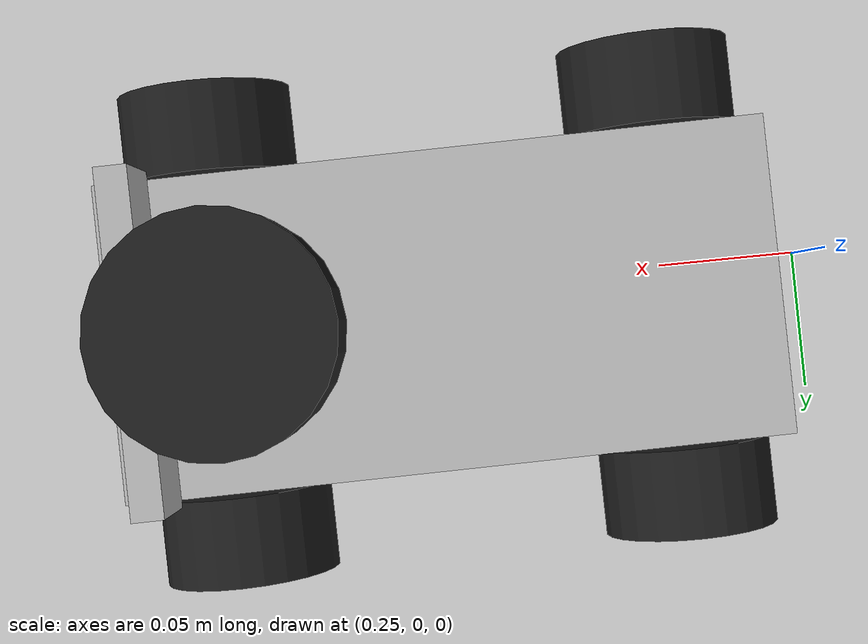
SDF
<sdf version="1.7">
 <world name="default">
  <light name="sun" type="directional">
   <pose>0 0 10 0 -0 0</pose>
   <diffuse>0.8 0.8 0.8 1</diffuse>
   <specular>0.2 0.2 0.2 1</specular>
   <attenuation>
    <range>1000</range>
    <constant>0.9</constant>
    <linear>0.01</linear>
    <quadratic>0.001</quadratic>
   </attenuation>
   <direction>-0.5 0.1 -0.9</direction>
   <spot><inner_angle>0</inner_angle><outer_angle>0</outer_angle><falloff>0</falloff></spot>
  </light>
  <model name="ground_plane">
   <static>1</static>
   <link name="link">
    <collision name="collision">
     <geometry><plane><normal>0 0 1</normal><size>100 100</size></plane></geometry>
     <surface>
      <contact><collide_bitmask>65535</collide_bitmask></contact>
      <friction><ode><mu>100</mu><mu2>50</mu2></ode></friction>
     </surface>
    </collision>
    <visual name="visual">
     <cast_shadows>0</cast_shadows>
     <geometry><plane><normal>0 0 1</normal><size>100 100</size></plane></geometry>
     <material>
      <script><uri>file://media/materials/scripts/gazebo.material</uri><name>Gazebo/Grey</name></script>
     </material>
    </visual>
   </link>
  </model>
  <gravity>0 0 -9.8</gravity>
  <magnetic_field>6e-06 2.3e-05 -4.2e-05</magnetic_field>
  <atmosphere type="adiabatic"/>
  <physics type="ode">
   <max_step_size>0.001</max_step_size>
   <real_time_factor>1</real_time_factor>
   <real_time_update_rate>1000</real_time_update_rate>
  </physics>
  <scene><ambient>0.4 0.4 0.4 1</ambient><background>0.7 0.7 0.7 1</background><shadows>1</shadows></scene>
  <spherical_coordinates>
   <surface_model>EARTH_WGS84</surface_model>
   <latitude_deg>0</latitude_deg>
   <longitude_deg>0</longitude_deg>
   <elevation>0</elevation>
   <heading_deg>0</heading_deg>
  </spherical_coordinates>
  <audio><device>default</device></audio>
  <model name="my_slambot">
   <link name="base_link">
    <inertial>
     <pose>0.107471 0 0.043765 0 -0 0</pose>
     <mass>0.85</mass>
     <inertia>
      <ixx>0.00226679</ixx>
      <ixy>1.5474e-20</ixy>
      <ixz>-0.000403094</ixz>
      <iyy>0.00430693</iyy>
      <iyz>-2.54949e-21</iyz>
      <izz>0.0041726</izz>
     </inertia>
    </inertial>
    <collision name="base_link_fixed_joint_lump__T265_pose_frame_collision">
     <pose>0.17 0 0.0725 0 -0 1.5708</pose>
     <geometry><box><size>0.105 0.01 0.025</size></box></geometry>
    </collision>
    <collision name="base_link_fixed_joint_lump__chassis_collision_1">
     <pose>0.0775 0 0.03 0 -0 0</pose>
     <geometry><box><size>0.21 0.1 0.06</size></box></geometry>
    </collision>
    <collision name="base_link_fixed_joint_lump__fl_wheel_collision_2">
     <pose>0.155 0.07 0 1.5708 -0 0</pose>
     <geometry><sphere><radius>0.03</radius></sphere></geometry>
     <surface><friction><ode><mu>0.001</mu><mu2>0.001</mu2></ode></friction></surface>
    </collision>
    <collision name="base_link_fixed_joint_lump__fr_wheel_collision_3">
     <pose>0.155 -0.07 0 1.5708 -0 0</pose>
     <geometry><sphere><radius>0.03</radius></sphere></geometry>
     <surface><friction><ode><mu>0.001</mu><mu2>0.001</mu2></ode></friction></surface>
    </collision>
    <collision name="base_link_fixed_joint_lump__laser_frame_collision_4">
     <pose>0.14 0 0.105 0 -0 3.14159</pose>
     <geometry><cylinder><length>0.025</length><radius>0.035</radius></cylinder></geometry>
    </collision>
    <collision name="base_link_fixed_joint_lump__laser_frame_collision_5">
     <pose>0.14 0 0.07625 0 -0 3.14159</pose>
     <geometry><cylinder><length>0.0325</length><radius>0.01</radius></cylinder></geometry>
    </collision>
    <visual name="base_link_fixed_joint_lump__T265_pose_frame_visual">
     <pose>0.17 0 0.0725 0 -0 1.5708</pose>
     <geometry><box><size>0.105 0.01 0.025</size></box></geometry>
    </visual>
    <visual name="base_link_fixed_joint_lump__chassis_visual_1">
     <pose>0.0775 0 0.03 0 -0 0</pose>
     <geometry><box><size>0.21 0.1 0.06</size></box></geometry>
    </visual>
    <visual name="base_link_fixed_joint_lump__fl_wheel_visual_2">
     <pose>0.155 0.07 0 1.5708 -0 0</pose>
     <geometry><cylinder><length>0.03</length><radius>0.03</radius></cylinder></geometry>
     <material>
      <script><name>Gazebo/Black</name><uri>file://media/materials/scripts/gazebo.material</uri></script>
     </material>
    </visual>
    <visual name="base_link_fixed_joint_lump__fr_wheel_visual_3">
     <pose>0.155 -0.07 0 1.5708 -0 0</pose>
     <geometry><cylinder><length>0.03</length><radius>0.03</radius></cylinder></geometry>
     <material>
      <script><name>Gazebo/Black</name><uri>file://media/materials/scripts/gazebo.material</uri></script>
     </material>
    </visual>
    <visual name="base_link_fixed_joint_lump__laser_frame_visual_4">
     <pose>0.14 0 0.105 0 -0 3.14159</pose>
     <geometry><cylinder><length>0.025</length><radius>0.035</radius></cylinder></geometry>
     <material>
      <script><name>Gazebo/Black</name><uri>file://media/materials/scripts/gazebo.material</uri></script>
     </material>
    </visual>
    <visual name="base_link_fixed_joint_lump__laser_frame_visual_5">
     <pose>0.14 0 0.07625 0 -0 3.14159</pose>
     <geometry><cylinder><length>0.0325</length><radius>0.01</radius></cylinder></geometry>
     <material>
      <script><name>Gazebo/Black</name><uri>file://media/materials/scripts/gazebo.material</uri></script>
     </material>
    </visual>
    <sensor name="laser" type="ray">
     <visualize>1</visualize>
     <update_rate>10</update_rate>
     <ray>
      <scan>
       <horizontal>
        <samples>360</samples>
        <min_angle>-3.142</min_angle>
        <max_angle>3.142</max_angle>
        <resolution>1</resolution>
       </horizontal>
       <vertical><samples>1</samples><min_angle>0</min_angle><max_angle>0</max_angle></vertical>
      </scan>
      <range><min>0.1</min><max>6</max></range>
     </ray>
     <plugin name="laser_controller" filename="libgazebo_ros_ray_sensor.so">
      <ros><argument>~/out:=scan</argument></ros>
      <output_type>sensor_msgs/LaserScan</output_type>
      <frame_name>laser_frame</frame_name>
     </plugin>
     <pose>0.14 0 0.105 0 -0 3.14159</pose>
    </sensor>
   </link>
   <joint name="left_wheel_joint" type="revolute">
    <pose relative_to="base_link">0 0.07 0 1.5708 -0 0</pose>
    <parent>base_link</parent>
    <child>left_wheel</child>
    <axis>
     <xyz>0 0 -1</xyz>
     <limit><lower>-1e+16</lower><upper>1e+16</upper></limit>
     <dynamics><spring_reference>0</spring_reference><spring_stiffness>0</spring_stiffness></dynamics>
    </axis>
   </joint>
   <link name="left_wheel">
    <pose relative_to="left_wheel_joint">0 0 0 0 -0 0</pose>
    <inertial>
     <mass>0.06</mass>
     <inertia><ixx>1.8e-05</ixx><ixy>0</ixy><ixz>0</ixz><iyy>1.8e-05</iyy><iyz>0</iyz><izz>2.7e-05</izz></inertia>
    </inertial>
    <collision name="left_wheel_collision"><geometry><sphere><radius>0.03</radius></sphere></geometry></collision>
    <visual name="left_wheel_visual">
     <geometry><cylinder><length>0.03</length><radius>0.03</radius></cylinder></geometry>
     <material>
      <script><name>Gazebo/Black</name><uri>file://media/materials/scripts/gazebo.material</uri></script>
     </material>
    </visual>
   </link>
   <joint name="right_wheel_joint" type="revolute">
    <pose relative_to="base_link">0 -0.07 0 1.5708 -0 0</pose>
    <parent>base_link</parent>
    <child>right_wheel</child>
    <axis>
     <xyz>0 0 -1</xyz>
     <limit><lower>-1e+16</lower><upper>1e+16</upper></limit>
     <dynamics><spring_reference>0</spring_reference><spring_stiffness>0</spring_stiffness></dynamics>
    </axis>
   </joint>
   <link name="right_wheel">
    <pose relative_to="right_wheel_joint">0 0 0 0 -0 0</pose>
    <inertial>
     <mass>0.06</mass>
     <inertia><ixx>1.8e-05</ixx><ixy>0</ixy><ixz>0</ixz><iyy>1.8e-05</iyy><iyz>0</iyz><izz>2.7e-05</izz></inertia>
    </inertial>
    <collision name="right_wheel_collision">
     <geometry><sphere><radius>0.03</radius></sphere></geometry>
    </collision>
    <visual name="right_wheel_visual">
     <geometry><cylinder><length>0.03</length><radius>0.03</radius></cylinder></geometry>
     <material>
      <script><name>Gazebo/Black</name><uri>file://media/materials/scripts/gazebo.material</uri></script>
     </material>
    </visual>
   </link>
   <static>0</static>
   <plugin name="gazebo_ros2_control" filename="libgazebo_ros2_control.so">
    <parameters>/home/atul/ros2_ws/install/slambot/share/slambot/config/my_controllers_sim.yaml</parameters>
   </plugin>
   <pose>0.302407 0.007747 0.029996 4.7e-05 -2e-06 0.008249</pose>
  </model>
 </world>
</sdf>
